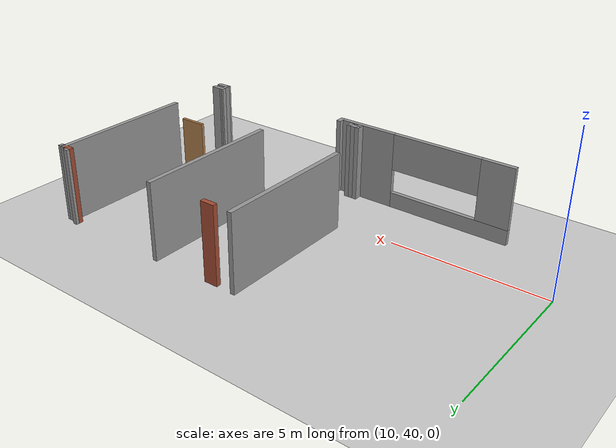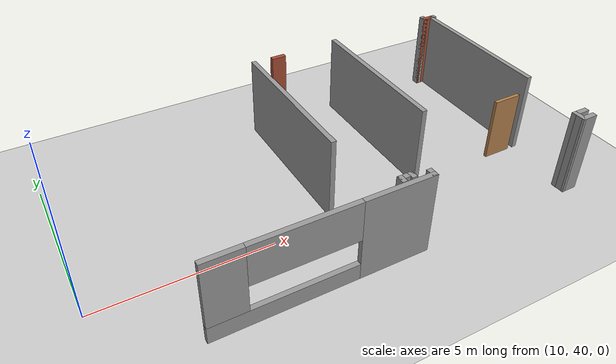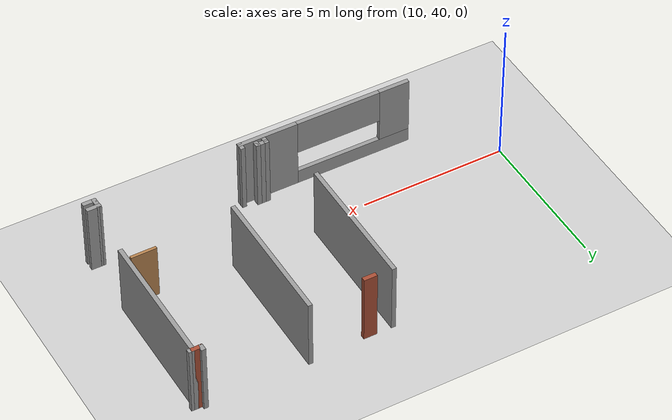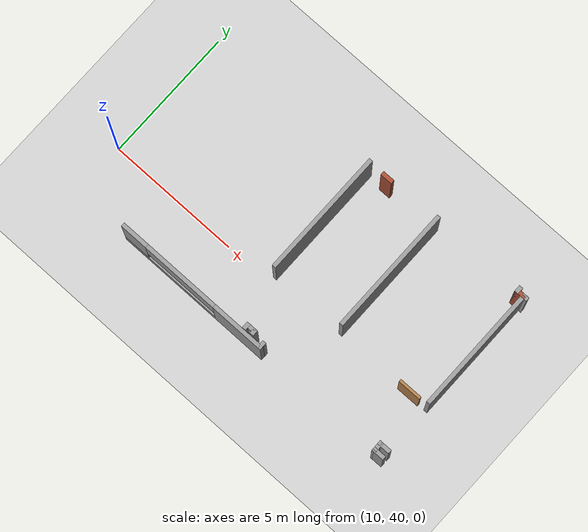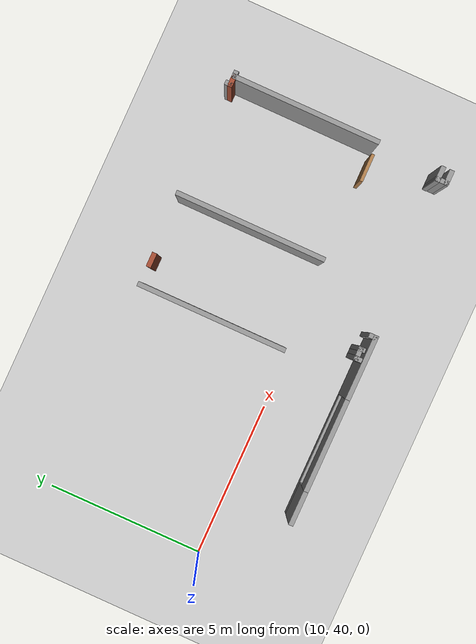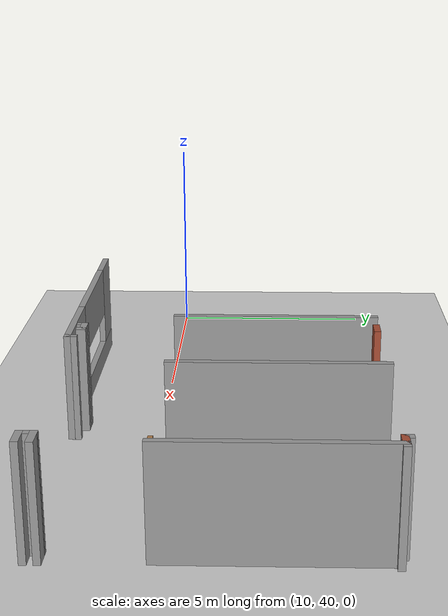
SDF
<sdf version="1.6">
 <world name="default">
  <model name="ground_plane">
   <static>1</static>
   <link name="link">
    <collision name="collision">
     <geometry><plane><normal>0 0 1</normal><size>100 100</size></plane></geometry>
     <surface><friction><ode><mu>100</mu><mu2>50</mu2></ode></friction></surface>
    </collision>
    <visual name="visual">
     <cast_shadows>0</cast_shadows>
     <geometry><plane><normal>0 0 1</normal><size>100 100</size></plane></geometry>
     <material>
      <script><uri>file://media/materials/scripts/gazebo.material</uri><name>Gazebo/Grey</name></script>
     </material>
    </visual>
   </link>
  </model>
  <model name="CVSSP">
   <pose>23.8714 24.094 0 0 -0 0</pose>
   <link name="Wall_315">
    <collision name="Wall_315_Collision">
     <geometry><box><size>4.75 0.15 2.5</size></box></geometry>
     <pose>0 0 1.25 0 -0 0</pose>
    </collision>
    <visual name="Wall_315_Visual">
     <pose>0 0 1.25 0 -0 0</pose>
     <geometry><box><size>4.75 0.15 2.5</size></box></geometry>
     <material>
      <script><uri>file://media/materials/scripts/gazebo.material</uri><name>Gazebo/Grey</name></script>
      <ambient>0.588235 0.588235 0.588235 1</ambient>
     </material>
    </visual>
    <pose>-7.00685 18.5251 0 0 -0 1.5708</pose>
   </link>
   <link name="Wall_318">
    <collision name="Wall_318_Collision">
     <geometry><box><size>4.79 0.15 2.5</size></box></geometry>
     <pose>0 0 1.25 0 -0 0</pose>
    </collision>
    <visual name="Wall_318_Visual">
     <pose>0 0 1.25 0 -0 0</pose>
     <geometry><box><size>4.79 0.15 2.5</size></box></geometry>
     <material>
      <script><uri>file://media/materials/scripts/gazebo.material</uri><name>Gazebo/Grey</name></script>
      <ambient>1 1 1 1</ambient>
     </material>
    </visual>
    <pose>-4.1133 18.5854 0 0 0 -1.5708</pose>
   </link>
   <link name="Wall_320">
    <collision name="Wall_320_Collision">
     <geometry><box><size>4.75 0.15 2.5</size></box></geometry>
     <pose>0 0 1.25 0 -0 0</pose>
    </collision>
    <visual name="Wall_320_Visual">
     <pose>0 0 1.25 0 -0 0</pose>
     <geometry><box><size>4.75 0.15 2.5</size></box></geometry>
     <material>
      <script><uri>file://media/materials/scripts/gazebo.material</uri><name>Gazebo/Grey</name></script>
      <ambient>0.588235 0.588235 0.588235 1</ambient>
     </material>
    </visual>
    <pose>-0.323303 18.5354 0 0 -0 1.5708</pose>
   </link>
   <link name="Wall_326">
    <collision name="Wall_326_Collision">
     <geometry><box><size>0.41 0.15 2.5</size></box></geometry>
     <pose>0 0 1.25 0 -0 0</pose>
    </collision>
    <visual name="Wall_326_Visual">
     <pose>0 0 1.25 0 -0 0</pose>
     <geometry><box><size>0.41 0.15 2.5</size></box></geometry>
     <material>
      <script><uri>file://media/materials/scripts/gazebo.material</uri><name>Gazebo/Bricks</name></script>
      <ambient>1 1 1 1</ambient>
     </material>
    </visual>
    <pose>-0.453303 20.8354 0 0 -0 3.14159</pose>
   </link>
   <link name="Wall_327">
    <collision name="Wall_327_Collision">
     <geometry><box><size>0.25 0.15 2.5</size></box></geometry>
     <pose>0 0 1.25 0 -0 0</pose>
    </collision>
    <visual name="Wall_327_Visual">
     <pose>0 0 1.25 0 -0 0</pose>
     <geometry><box><size>0.25 0.15 2.5</size></box></geometry>
     <material>
      <script><uri>file://media/materials/scripts/gazebo.material</uri><name>Gazebo/Grey</name></script>
      <ambient>1 1 1 1</ambient>
     </material>
    </visual>
    <pose>-0.583303 20.8854 0 0 -0 1.5708</pose>
   </link>
   <link name="Wall_329">
    <collision name="Wall_329_Collision">
     <geometry><box><size>0.25 0.15 2.5</size></box></geometry>
     <pose>0 0 1.25 0 -0 0</pose>
    </collision>
    <visual name="Wall_329_Visual">
     <pose>0 0 1.25 0 -0 0</pose>
     <geometry><box><size>0.25 0.15 2.5</size></box></geometry>
     <material>
      <script><uri>file://media/materials/scripts/gazebo.material</uri><name>Gazebo/Grey</name></script>
      <ambient>1 1 1 1</ambient>
     </material>
    </visual>
    <pose>-0.273303 20.8354 0 0 -0 0</pose>
   </link>
   <link name="Wall_619">
    <collision name="Wall_619_Collision">
     <geometry><box><size>0.491176 0.15 2.5</size></box></geometry>
     <pose>0 0 1.25 0 -0 0</pose>
    </collision>
    <visual name="Wall_619_Visual">
     <pose>0 0 1.25 0 -0 0</pose>
     <geometry><box><size>0.491176 0.15 2.5</size></box></geometry>
     <material>
      <script><uri>file://media/materials/scripts/gazebo.material</uri><name>Gazebo/Grey</name></script>
      <ambient>1 1 1 1</ambient>
     </material>
    </visual>
    <pose>-0.431731 14.1578 0 0 -0 0</pose>
   </link>
   <link name="Wall_621">
    <collision name="Wall_621_Collision">
     <geometry><box><size>0.479611 0.15 2.5</size></box></geometry>
     <pose>0 0 1.25 0 -0 0</pose>
    </collision>
    <visual name="Wall_621_Visual">
     <pose>0 0 1.25 0 -0 0</pose>
     <geometry><box><size>0.479611 0.15 2.5</size></box></geometry>
     <material>
      <script><uri>file://media/materials/scripts/gazebo.material</uri><name>Gazebo/Grey</name></script>
      <ambient>1 1 1 1</ambient>
     </material>
    </visual>
    <pose>-0.425949 13.8861 0 0 -0 3.14159</pose>
   </link>
   <link name="Wall_622">
    <collision name="Wall_622_Collision">
     <geometry><box><size>0.421846 0.15 2.5</size></box></geometry>
     <pose>0 0 1.25 0 -0 0</pose>
    </collision>
    <visual name="Wall_622_Visual">
     <pose>0 0 1.25 0 -0 0</pose>
     <geometry><box><size>0.421846 0.15 2.5</size></box></geometry>
     <material>
      <script><uri>file://media/materials/scripts/gazebo.material</uri><name>Gazebo/Grey</name></script>
      <ambient>1 1 1 1</ambient>
     </material>
    </visual>
    <pose>-0.593646 14.0219 0 0 -0 1.59207</pose>
   </link>
   <link name="Wall_624">
    <collision name="Wall_624_Collision">
     <geometry><box><size>0.291595 0.15 2.5</size></box></geometry>
     <pose>0 0 1.25 0 -0 0</pose>
    </collision>
    <visual name="Wall_624_Visual">
     <pose>0 0 1.25 0 -0 0</pose>
     <geometry><box><size>0.291595 0.15 2.5</size></box></geometry>
     <material>
      <script><uri>file://media/materials/scripts/gazebo.material</uri><name>Gazebo/Grey</name></script>
      <ambient>1 1 1 1</ambient>
     </material>
    </visual>
    <pose>-5.57863 13.9687 0 0 0 -1.5708</pose>
   </link>
   <link name="Wall_625">
    <pose>-8.55211 13.8979 0 0 -0 3.14159</pose>
    <visual name="Wall_625_Visual_0">
     <pose>-2.01383 0 1.25 0 -0 0</pose>
     <geometry><box><size>2.06931 0.15 2.5</size></box></geometry>
     <material>
      <script><uri>file://media/materials/scripts/gazebo.material</uri><name>Gazebo/Grey</name></script>
      <ambient>1 1 1 1</ambient>
     </material>
    </visual>
    <collision name="Wall_625_Collision_0">
     <geometry><box><size>2.06931 0.15 2.5</size></box></geometry>
     <pose>-2.01383 0 1.25 0 -0 0</pose>
    </collision>
    <visual name="Wall_625_Visual_1">
     <pose>1.03465 0 0.25 0 -0 0</pose>
     <geometry><box><size>4.02766 0.15 0.5</size></box></geometry>
     <material>
      <script><uri>file://media/materials/scripts/gazebo.material</uri><name>Gazebo/Grey</name></script>
      <ambient>1 1 1 1</ambient>
     </material>
    </visual>
    <collision name="Wall_625_Collision_1">
     <geometry><box><size>4.02766 0.15 0.5</size></box></geometry>
     <pose>1.03465 0 0.25 0 -0 0</pose>
    </collision>
    <visual name="Wall_625_Visual_2">
     <pose>2.51124 0 1.5 0 -0 0</pose>
     <geometry><box><size>1.07449 0.15 2</size></box></geometry>
     <material>
      <script><uri>file://media/materials/scripts/gazebo.material</uri><name>Gazebo/Grey</name></script>
      <ambient>1 1 1 1</ambient>
     </material>
    </visual>
    <collision name="Wall_625_Collision_2">
     <geometry><box><size>1.07449 0.15 2</size></box></geometry>
     <pose>2.51124 0 1.5 0 -0 0</pose>
    </collision>
    <visual name="Wall_625_Visual_3">
     <pose>0.497408 0 1.9 0 -0 0</pose>
     <geometry><box><size>2.95317 0.15 1.2</size></box></geometry>
     <material>
      <script><uri>file://media/materials/scripts/gazebo.material</uri><name>Gazebo/Grey</name></script>
      <ambient>1 1 1 1</ambient>
     </material>
    </visual>
    <collision name="Wall_625_Collision_3">
     <geometry><box><size>2.95317 0.15 1.2</size></box></geometry>
     <pose>0.497408 0 1.9 0 -0 0</pose>
    </collision>
   </link>
   <link name="Wall_628">
    <collision name="Wall_628_Collision">
     <geometry><box><size>0.251643 0.15 2.5</size></box></geometry>
     <pose>0 0 1.25 0 -0 0</pose>
    </collision>
    <visual name="Wall_628_Visual">
     <pose>0 0 1.25 0 -0 0</pose>
     <geometry><box><size>0.251643 0.15 2.5</size></box></geometry>
     <material>
      <script><uri>file://media/materials/scripts/gazebo.material</uri><name>Gazebo/Grey</name></script>
      <ambient>1 1 1 1</ambient>
     </material>
    </visual>
    <pose>-6.3574 14.1103 0 0 -0 1.5708</pose>
   </link>
   <link name="Wall_629">
    <collision name="Wall_629_Collision">
     <geometry><box><size>0.453417 0.15 2.5</size></box></geometry>
     <pose>0 0 1.25 0 -0 0</pose>
    </collision>
    <visual name="Wall_629_Visual">
     <pose>0 0 1.25 0 -0 0</pose>
     <geometry><box><size>0.453417 0.15 2.5</size></box></geometry>
     <material>
      <script><uri>file://media/materials/scripts/gazebo.material</uri><name>Gazebo/Grey</name></script>
      <ambient>1 1 1 1</ambient>
     </material>
    </visual>
    <pose>-6.20569 14.1608 0 0 -0 0</pose>
   </link>
   <link name="Wall_630">
    <collision name="Wall_630_Collision">
     <geometry><box><size>0.220797 0.15 2.5</size></box></geometry>
     <pose>0 0 1.25 0 -0 0</pose>
    </collision>
    <visual name="Wall_630_Visual">
     <pose>0 0 1.25 0 -0 0</pose>
     <geometry><box><size>0.220797 0.15 2.5</size></box></geometry>
     <material>
      <script><uri>file://media/materials/scripts/gazebo.material</uri><name>Gazebo/Grey</name></script>
      <ambient>1 1 1 1</ambient>
     </material>
    </visual>
    <pose>-6.05398 14.1255 0 0 0 -1.5708</pose>
   </link>
   <link name="Wall_663">
    <collision name="Wall_663_Collision">
     <geometry><box><size>0.456076 0.15 2.5</size></box></geometry>
     <pose>0 0 1.25 0 -0 0</pose>
    </collision>
    <visual name="Wall_663_Visual">
     <pose>0 0 1.25 0 -0 0</pose>
     <geometry><box><size>0.456076 0.15 2.5</size></box></geometry>
     <material>
      <script><uri>file://media/materials/scripts/gazebo.material</uri><name>Gazebo/Bricks</name></script>
      <ambient>1 1 1 1</ambient>
     </material>
    </visual>
    <pose>-6.21292 20.8145 0 0 -0 0</pose>
   </link>
   <static>1</static>
  </model>
  <model name="basic_ply_door_corrected_clone_clone_clone_clone_0_clone_1">
   <link name="link">
    <pose>-0 0 1.00385 0 -0 0</pose>
    <inertial>
     <mass>0.5167</mass>
     <inertia>
      <ixx>0.00086117</ixx>
      <ixy>0</ixy>
      <ixz>0</ixz>
      <iyy>0.00086117</iyy>
      <iyz>0</iyz>
      <izz>0.00086117</izz>
     </inertia>
    </inertial>
    <gravity>0</gravity>
    <visual name="visual">
     <geometry><box><size>0.88 0.1 1.96</size></box></geometry>
     <material>
      <script><uri>file://media/materials/scripts/gazebo.material</uri><name>Gazebo/Wood</name></script>
      <shader type="pixel"><normal_map>__default__</normal_map></shader>
      <ambient>1 1 1 1</ambient>
      <diffuse>1 1 1 1</diffuse>
      <specular>0.2 0.2 0.2 1</specular>
      <emissive>0 0 0 1</emissive>
     </material>
    </visual>
    <collision name="collision">
     <geometry><box><size>0.88 0.1 1.96</size></box></geometry>
     <surface>
      <friction>
       <ode><mu>1</mu><mu2>1</mu2><fdir1>0 0 0</fdir1><slip1>0</slip1><slip2>0</slip2></ode>
       <torsional>
        <coefficient>1</coefficient>
        <patch_radius>0</patch_radius>
        <surface_radius>0.01</surface_radius>
        <use_patch_radius>0</use_patch_radius>
        <ode><slip>0</slip></ode>
       </torsional>
      </friction>
      <bounce><restitution_coefficient>0</restitution_coefficient><threshold>1e+06</threshold></bounce>
      <contact>
       <collide_without_contact>0</collide_without_contact>
       <collide_without_contact_bitmask>1</collide_without_contact_bitmask>
       <collide_bitmask>1</collide_bitmask>
       <ode>
        <soft_cfm>0</soft_cfm>
        <soft_erp>0.2</soft_erp>
        <kp>100000</kp>
        <kd>100</kd>
        <max_vel>100</max_vel>
        <min_depth>0.001</min_depth>
       </ode>
       <bullet>
        <split_impulse>1</split_impulse>
        <split_impulse_penetration_threshold>-0.01</split_impulse_penetration_threshold>
        <soft_cfm>0</soft_cfm>
        <soft_erp>0.2</soft_erp>
        <kp>100000</kp>
        <kd>100</kd>
       </bullet>
      </contact>
     </surface>
    </collision>
   </link>
   <static>1</static>
   <pose>22.7968 40.2551 0.02761 0 -0 0.005419</pose>
  </model>
 </world>
</sdf>
